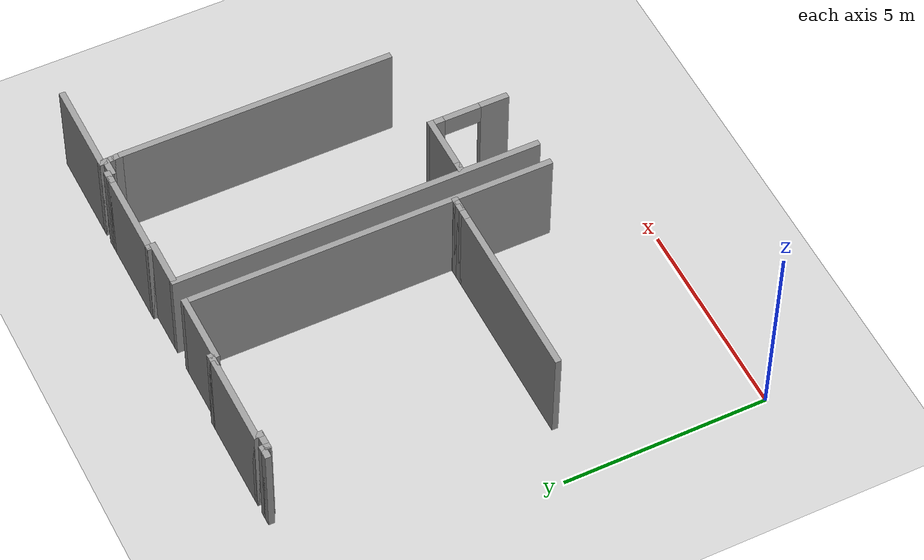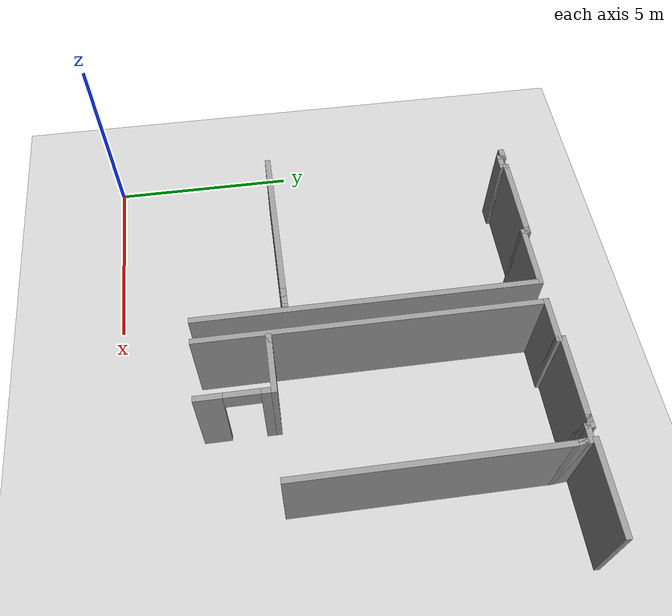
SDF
<sdf version="1.6">
 <world name="default">
  <model name="ground_plane">
   <static>1</static>
   <link name="link">
    <collision name="collision">
     <geometry><plane><normal>0 0 1</normal><size>100 100</size></plane></geometry>
     <surface><friction><ode><mu>100</mu><mu2>50</mu2></ode></friction></surface>
    </collision>
    <visual name="visual">
     <cast_shadows>0</cast_shadows>
     <geometry><plane><normal>0 0 1</normal><size>100 100</size></plane></geometry>
     <material>
      <script><uri>file://media/materials/scripts/gazebo.material</uri><name>Gazebo/Grey</name></script>
     </material>
    </visual>
   </link>
  </model>
  <model name="office_full">
   <pose>-0.417572 -0.704362 0 0 -0 0</pose>
   <link name="Wall_329">
    <collision name="Wall_329_Collision">
     <geometry><box><size>0.25 0.15 2.5</size></box></geometry>
     <pose>0 0 1.25 0 -0 0</pose>
    </collision>
    <visual name="Wall_329_Visual">
     <pose>0 0 1.25 0 -0 0</pose>
     <geometry><box><size>0.25 0.15 2.5</size></box></geometry>
     <material>
      <script><uri>file://media/materials/scripts/gazebo.material</uri><name>Gazebo/Grey</name></script>
      <ambient>1 1 1 1</ambient>
     </material>
    </visual>
    <pose>2.35798 11.8397 0 0 -0 0</pose>
   </link>
   <link name="Wall_330">
    <collision name="Wall_330_Collision">
     <geometry><box><size>0.25 0.15 2.5</size></box></geometry>
     <pose>0 0 1.25 0 -0 0</pose>
    </collision>
    <visual name="Wall_330_Visual">
     <pose>0 0 1.25 0 -0 0</pose>
     <geometry><box><size>0.25 0.15 2.5</size></box></geometry>
     <material>
      <script><uri>file://media/materials/scripts/gazebo.material</uri><name>Gazebo/Grey</name></script>
      <ambient>1 1 1 1</ambient>
     </material>
    </visual>
    <pose>2.45798 11.8397 0 0 -0 0</pose>
   </link>
   <link name="Wall_331">
    <collision name="Wall_331_Collision">
     <geometry><box><size>0.25 0.15 2.5</size></box></geometry>
     <pose>0 0 1.25 0 -0 0</pose>
    </collision>
    <visual name="Wall_331_Visual">
     <pose>0 0 1.25 0 -0 0</pose>
     <geometry><box><size>0.25 0.15 2.5</size></box></geometry>
     <material>
      <script><uri>file://media/materials/scripts/gazebo.material</uri><name>Gazebo/Grey</name></script>
      <ambient>1 1 1 1</ambient>
     </material>
    </visual>
    <pose>2.50798 11.7897 0 0 0 -1.5708</pose>
   </link>
   <link name="Wall_332">
    <collision name="Wall_332_Collision">
     <geometry><box><size>0.5 0.15 2.5</size></box></geometry>
     <pose>0 0 1.25 0 -0 0</pose>
    </collision>
    <visual name="Wall_332_Visual">
     <pose>0 0 1.25 0 -0 0</pose>
     <geometry><box><size>0.5 0.15 2.5</size></box></geometry>
     <material>
      <script><uri>file://media/materials/scripts/gazebo.material</uri><name>Gazebo/Grey</name></script>
      <ambient>1 1 1 1</ambient>
     </material>
    </visual>
    <pose>2.68298 11.7397 0 0 -0 0</pose>
   </link>
   <link name="Wall_333">
    <collision name="Wall_333_Collision">
     <geometry><box><size>0.25 0.15 2.5</size></box></geometry>
     <pose>0 0 1.25 0 -0 0</pose>
    </collision>
    <visual name="Wall_333_Visual">
     <pose>0 0 1.25 0 -0 0</pose>
     <geometry><box><size>0.25 0.15 2.5</size></box></geometry>
     <material>
      <script><uri>file://media/materials/scripts/gazebo.material</uri><name>Gazebo/Grey</name></script>
      <ambient>1 1 1 1</ambient>
     </material>
    </visual>
    <pose>2.85798 11.7897 0 0 -0 1.5708</pose>
   </link>
   <link name="Wall_334">
    <collision name="Wall_334_Collision">
     <geometry><box><size>2.25 0.15 2.5</size></box></geometry>
     <pose>0 0 1.25 0 -0 0</pose>
    </collision>
    <visual name="Wall_334_Visual">
     <pose>0 0 1.25 0 -0 0</pose>
     <geometry><box><size>2.25 0.15 2.5</size></box></geometry>
     <material>
      <script><uri>file://media/materials/scripts/gazebo.material</uri><name>Gazebo/Grey</name></script>
      <ambient>1 1 1 1</ambient>
     </material>
    </visual>
    <pose>3.90798 11.8397 0 0 -0 0</pose>
   </link>
   <link name="Wall_335">
    <collision name="Wall_335_Collision">
     <geometry><box><size>0.25 0.15 2.5</size></box></geometry>
     <pose>0 0 1.25 0 -0 0</pose>
    </collision>
    <visual name="Wall_335_Visual">
     <pose>0 0 1.25 0 -0 0</pose>
     <geometry><box><size>0.25 0.15 2.5</size></box></geometry>
     <material>
      <script><uri>file://media/materials/scripts/gazebo.material</uri><name>Gazebo/Grey</name></script>
      <ambient>1 1 1 1</ambient>
     </material>
    </visual>
    <pose>5.00798 11.8397 0 0 -0 0</pose>
   </link>
   <link name="Wall_338">
    <collision name="Wall_338_Collision">
     <geometry><box><size>0.25 0.15 2.5</size></box></geometry>
     <pose>0 0 1.25 0 -0 0</pose>
    </collision>
    <visual name="Wall_338_Visual">
     <pose>0 0 1.25 0 -0 0</pose>
     <geometry><box><size>0.25 0.15 2.5</size></box></geometry>
     <material>
      <script><uri>file://media/materials/scripts/gazebo.material</uri><name>Gazebo/Grey</name></script>
      <ambient>1 1 1 1</ambient>
     </material>
    </visual>
    <pose>5.00798 11.8397 0 0 -0 0</pose>
   </link>
   <link name="Wall_339">
    <collision name="Wall_339_Collision">
     <geometry><box><size>0.25 0.15 2.5</size></box></geometry>
     <pose>0 0 1.25 0 -0 0</pose>
    </collision>
    <visual name="Wall_339_Visual">
     <pose>0 0 1.25 0 -0 0</pose>
     <geometry><box><size>0.25 0.15 2.5</size></box></geometry>
     <material>
      <script><uri>file://media/materials/scripts/gazebo.material</uri><name>Gazebo/Grey</name></script>
      <ambient>1 1 1 1</ambient>
     </material>
    </visual>
    <pose>5.10798 11.8397 0 0 -0 0</pose>
   </link>
   <link name="Wall_340">
    <collision name="Wall_340_Collision">
     <geometry><box><size>0.25 0.15 2.5</size></box></geometry>
     <pose>0 0 1.25 0 -0 0</pose>
    </collision>
    <visual name="Wall_340_Visual">
     <pose>0 0 1.25 0 -0 0</pose>
     <geometry><box><size>0.25 0.15 2.5</size></box></geometry>
     <material>
      <script><uri>file://media/materials/scripts/gazebo.material</uri><name>Gazebo/Grey</name></script>
      <ambient>1 1 1 1</ambient>
     </material>
    </visual>
    <pose>5.15798 11.7897 0 0 0 -1.5708</pose>
   </link>
   <link name="Wall_341">
    <collision name="Wall_341_Collision">
     <geometry><box><size>1.75 0.15 2.5</size></box></geometry>
     <pose>0 0 1.25 0 -0 0</pose>
    </collision>
    <visual name="Wall_341_Visual">
     <pose>0 0 1.25 0 -0 0</pose>
     <geometry><box><size>1.75 0.15 2.5</size></box></geometry>
     <material>
      <script><uri>file://media/materials/scripts/gazebo.material</uri><name>Gazebo/Grey</name></script>
      <ambient>1 1 1 1</ambient>
     </material>
    </visual>
    <pose>5.95798 11.7397 0 0 -0 0</pose>
   </link>
   <link name="Wall_342">
    <collision name="Wall_342_Collision">
     <geometry><box><size>9 0.15 2.5</size></box></geometry>
     <pose>0 0 1.25 0 -0 0</pose>
    </collision>
    <visual name="Wall_342_Visual">
     <pose>0 0 1.25 0 -0 0</pose>
     <geometry><box><size>9 0.15 2.5</size></box></geometry>
     <material>
      <script><uri>file://media/materials/scripts/gazebo.material</uri><name>Gazebo/Grey</name></script>
      <ambient>1 1 1 1</ambient>
     </material>
    </visual>
    <pose>6.75798 7.31471 0 0 0 -1.5708</pose>
   </link>
   <link name="Wall_389">
    <collision name="Wall_389_Collision">
     <geometry><box><size>4.5 0.15 2.5</size></box></geometry>
     <pose>0 0 1.25 0 -0 0</pose>
    </collision>
    <visual name="Wall_389_Visual">
     <pose>0 0 1.25 0 -0 0</pose>
     <geometry><box><size>4.5 0.15 2.5</size></box></geometry>
     <material>
      <script><uri>file://media/materials/scripts/gazebo.material</uri><name>Gazebo/Grey</name></script>
      <ambient>1 1 1 1</ambient>
     </material>
    </visual>
    <pose>4.02068 5.23121 0 0 -0 0</pose>
   </link>
   <link name="Wall_390">
    <collision name="Wall_390_Collision">
     <geometry><box><size>0.25 0.15 2.5</size></box></geometry>
     <pose>0 0 1.25 0 -0 0</pose>
    </collision>
    <visual name="Wall_390_Visual">
     <pose>0 0 1.25 0 -0 0</pose>
     <geometry><box><size>0.25 0.15 2.5</size></box></geometry>
     <material>
      <script><uri>file://media/materials/scripts/gazebo.material</uri><name>Gazebo/Grey</name></script>
      <ambient>1 1 1 1</ambient>
     </material>
    </visual>
    <pose>6.24568 5.23121 0 0 -0 0</pose>
   </link>
   <link name="Wall_391">
    <collision name="Wall_391_Collision">
     <geometry><box><size>0.25 0.15 2.5</size></box></geometry>
     <pose>0 0 1.25 0 -0 0</pose>
    </collision>
    <visual name="Wall_391_Visual">
     <pose>0 0 1.25 0 -0 0</pose>
     <geometry><box><size>0.25 0.15 2.5</size></box></geometry>
     <material>
      <script><uri>file://media/materials/scripts/gazebo.material</uri><name>Gazebo/Grey</name></script>
      <ambient>1 1 1 1</ambient>
     </material>
    </visual>
    <pose>6.34568 5.23121 0 0 -0 0</pose>
   </link>
   <link name="Wall_392">
    <collision name="Wall_392_Collision">
     <geometry><box><size>0.25 0.15 2.5</size></box></geometry>
     <pose>0 0 1.25 0 -0 0</pose>
    </collision>
    <visual name="Wall_392_Visual">
     <pose>0 0 1.25 0 -0 0</pose>
     <geometry><box><size>0.25 0.15 2.5</size></box></geometry>
     <material>
      <script><uri>file://media/materials/scripts/gazebo.material</uri><name>Gazebo/Grey</name></script>
      <ambient>1 1 1 1</ambient>
     </material>
    </visual>
    <pose>6.44568 5.23121 0 0 -0 0</pose>
   </link>
   <link name="Wall_393">
    <collision name="Wall_393_Collision">
     <geometry><box><size>0.25 0.15 2.5</size></box></geometry>
     <pose>0 0 1.25 0 -0 0</pose>
    </collision>
    <visual name="Wall_393_Visual">
     <pose>0 0 1.25 0 -0 0</pose>
     <geometry><box><size>0.25 0.15 2.5</size></box></geometry>
     <material>
      <script><uri>file://media/materials/scripts/gazebo.material</uri><name>Gazebo/Grey</name></script>
      <ambient>1 1 1 1</ambient>
     </material>
    </visual>
    <pose>6.54568 5.23121 0 0 -0 0</pose>
   </link>
   <link name="Wall_394">
    <collision name="Wall_394_Collision">
     <geometry><box><size>0.25 0.15 2.5</size></box></geometry>
     <pose>0 0 1.25 0 -0 0</pose>
    </collision>
    <visual name="Wall_394_Visual">
     <pose>0 0 1.25 0 -0 0</pose>
     <geometry><box><size>0.25 0.15 2.5</size></box></geometry>
     <material>
      <script><uri>file://media/materials/scripts/gazebo.material</uri><name>Gazebo/Grey</name></script>
      <ambient>1 1 1 1</ambient>
     </material>
    </visual>
    <pose>6.64568 5.23121 0 0 -0 0</pose>
   </link>
   <link name="Wall_401">
    <collision name="Wall_401_Collision">
     <geometry><box><size>9 0.15 2.5</size></box></geometry>
     <pose>0 0 1.25 0 -0 0</pose>
    </collision>
    <visual name="Wall_401_Visual">
     <pose>0 0 1.25 0 -0 0</pose>
     <geometry><box><size>9 0.15 2.5</size></box></geometry>
     <material>
      <script><uri>file://media/materials/scripts/gazebo.material</uri><name>Gazebo/Grey</name></script>
      <ambient>1 1 1 1</ambient>
     </material>
    </visual>
    <pose>7.35798 7.31471 0 0 -0 1.5708</pose>
   </link>
   <link name="Wall_402">
    <collision name="Wall_402_Collision">
     <geometry><box><size>1.25 0.15 2.5</size></box></geometry>
     <pose>0 0 1.25 0 -0 0</pose>
    </collision>
    <visual name="Wall_402_Visual">
     <pose>0 0 1.25 0 -0 0</pose>
     <geometry><box><size>1.25 0.15 2.5</size></box></geometry>
     <material>
      <script><uri>file://media/materials/scripts/gazebo.material</uri><name>Gazebo/Grey</name></script>
      <ambient>1 1 1 1</ambient>
     </material>
    </visual>
    <pose>7.90798 11.7397 0 0 -0 0</pose>
   </link>
   <link name="Wall_403">
    <collision name="Wall_403_Collision">
     <geometry><box><size>0.25 0.15 2.5</size></box></geometry>
     <pose>0 0 1.25 0 -0 0</pose>
    </collision>
    <visual name="Wall_403_Visual">
     <pose>0 0 1.25 0 -0 0</pose>
     <geometry><box><size>0.25 0.15 2.5</size></box></geometry>
     <material>
      <script><uri>file://media/materials/scripts/gazebo.material</uri><name>Gazebo/Grey</name></script>
      <ambient>1 1 1 1</ambient>
     </material>
    </visual>
    <pose>8.45798 11.7897 0 0 -0 1.5708</pose>
   </link>
   <link name="Wall_404">
    <collision name="Wall_404_Collision">
     <geometry><box><size>2.25 0.15 2.5</size></box></geometry>
     <pose>0 0 1.25 0 -0 0</pose>
    </collision>
    <visual name="Wall_404_Visual">
     <pose>0 0 1.25 0 -0 0</pose>
     <geometry><box><size>2.25 0.15 2.5</size></box></geometry>
     <material>
      <script><uri>file://media/materials/scripts/gazebo.material</uri><name>Gazebo/Grey</name></script>
      <ambient>1 1 1 1</ambient>
     </material>
    </visual>
    <pose>9.50798 11.8397 0 0 -0 0</pose>
   </link>
   <link name="Wall_405">
    <collision name="Wall_405_Collision">
     <geometry><box><size>0.25 0.15 2.5</size></box></geometry>
     <pose>0 0 1.25 0 -0 0</pose>
    </collision>
    <visual name="Wall_405_Visual">
     <pose>0 0 1.25 0 -0 0</pose>
     <geometry><box><size>0.25 0.15 2.5</size></box></geometry>
     <material>
      <script><uri>file://media/materials/scripts/gazebo.material</uri><name>Gazebo/Grey</name></script>
      <ambient>1 1 1 1</ambient>
     </material>
    </visual>
    <pose>10.608 11.8397 0 0 -0 0</pose>
   </link>
   <link name="Wall_406">
    <collision name="Wall_406_Collision">
     <geometry><box><size>0.25 0.15 2.5</size></box></geometry>
     <pose>0 0 1.25 0 -0 0</pose>
    </collision>
    <visual name="Wall_406_Visual">
     <pose>0 0 1.25 0 -0 0</pose>
     <geometry><box><size>0.25 0.15 2.5</size></box></geometry>
     <material>
      <script><uri>file://media/materials/scripts/gazebo.material</uri><name>Gazebo/Grey</name></script>
      <ambient>1 1 1 1</ambient>
     </material>
    </visual>
    <pose>10.708 11.8397 0 0 -0 0</pose>
   </link>
   <link name="Wall_407">
    <collision name="Wall_407_Collision">
     <geometry><box><size>0.25 0.15 2.5</size></box></geometry>
     <pose>0 0 1.25 0 -0 0</pose>
    </collision>
    <visual name="Wall_407_Visual">
     <pose>0 0 1.25 0 -0 0</pose>
     <geometry><box><size>0.25 0.15 2.5</size></box></geometry>
     <material>
      <script><uri>file://media/materials/scripts/gazebo.material</uri><name>Gazebo/Grey</name></script>
      <ambient>1 1 1 1</ambient>
     </material>
    </visual>
    <pose>10.758 11.7897 0 0 0 -1.5708</pose>
   </link>
   <link name="Wall_458">
    <pose>8.90798 3.81471 0 0 -0 1.5708</pose>
    <visual name="Wall_458_Visual_0">
     <pose>-0.644234 0 1.25 0 -0 0</pose>
     <geometry><box><size>0.711531 0.15 2.5</size></box></geometry>
     <material>
      <script><uri>file://media/materials/scripts/gazebo.material</uri><name>Gazebo/Grey</name></script>
      <ambient>1 1 1 1</ambient>
     </material>
    </visual>
    <collision name="Wall_458_Collision_0">
     <geometry><box><size>0.711531 0.15 2.5</size></box></geometry>
     <pose>-0.644234 0 1.25 0 -0 0</pose>
    </collision>
    <visual name="Wall_458_Visual_1">
     <pose>0.805766 0 1.25 0 -0 0</pose>
     <geometry><box><size>0.388469 0.15 2.5</size></box></geometry>
     <material>
      <script><uri>file://media/materials/scripts/gazebo.material</uri><name>Gazebo/Grey</name></script>
      <ambient>1 1 1 1</ambient>
     </material>
    </visual>
    <collision name="Wall_458_Collision_1">
     <geometry><box><size>0.388469 0.15 2.5</size></box></geometry>
     <pose>0.805766 0 1.25 0 -0 0</pose>
    </collision>
    <visual name="Wall_458_Visual_2">
     <pose>0.161531 0 2.25 0 -0 0</pose>
     <geometry><box><size>0.9 0.15 0.5</size></box></geometry>
     <material>
      <script><uri>file://media/materials/scripts/gazebo.material</uri><name>Gazebo/Grey</name></script>
      <ambient>1 1 1 1</ambient>
     </material>
    </visual>
    <collision name="Wall_458_Collision_2">
     <geometry><box><size>0.9 0.15 0.5</size></box></geometry>
     <pose>0.161531 0 2.25 0 -0 0</pose>
    </collision>
   </link>
   <link name="Wall_459">
    <collision name="Wall_459_Collision">
     <geometry><box><size>1.5 0.15 2.5</size></box></geometry>
     <pose>0 0 1.25 0 -0 0</pose>
    </collision>
    <visual name="Wall_459_Visual">
     <pose>0 0 1.25 0 -0 0</pose>
     <geometry><box><size>1.5 0.15 2.5</size></box></geometry>
     <material>
      <script><uri>file://media/materials/scripts/gazebo.material</uri><name>Gazebo/Grey</name></script>
      <ambient>1 1 1 1</ambient>
     </material>
    </visual>
    <pose>8.23298 4.73971 0 0 -0 3.14159</pose>
   </link>
   <link name="Wall_460">
    <collision name="Wall_460_Collision">
     <geometry><box><size>0.25 0.15 2.5</size></box></geometry>
     <pose>0 0 1.25 0 -0 0</pose>
    </collision>
    <visual name="Wall_460_Visual">
     <pose>0 0 1.25 0 -0 0</pose>
     <geometry><box><size>0.25 0.15 2.5</size></box></geometry>
     <material>
      <script><uri>file://media/materials/scripts/gazebo.material</uri><name>Gazebo/Grey</name></script>
      <ambient>1 1 1 1</ambient>
     </material>
    </visual>
    <pose>7.50798 4.73971 0 0 -0 3.14159</pose>
   </link>
   <link name="Wall_486">
    <collision name="Wall_486_Collision">
     <geometry><box><size>6.75242 0.15 2.5</size></box></geometry>
     <pose>0 0 1.25 0 -0 0</pose>
    </collision>
    <visual name="Wall_486_Visual">
     <pose>0 0 1.25 0 -0 0</pose>
     <geometry><box><size>6.75242 0.15 2.5</size></box></geometry>
     <material>
      <script><uri>file://media/materials/scripts/gazebo.material</uri><name>Gazebo/Grey</name></script>
      <ambient>1 1 1 1</ambient>
     </material>
    </visual>
    <pose>11.136 8.04511 0 0 -0 1.57129</pose>
   </link>
   <link name="Wall_488">
    <collision name="Wall_488_Collision">
     <geometry><box><size>0.25 0.15 2.5</size></box></geometry>
     <pose>0 0 1.25 0 -0 0</pose>
    </collision>
    <visual name="Wall_488_Visual">
     <pose>0 0 1.25 0 -0 0</pose>
     <geometry><box><size>0.25 0.15 2.5</size></box></geometry>
     <material>
      <script><uri>file://media/materials/scripts/gazebo.material</uri><name>Gazebo/Grey</name></script>
      <ambient>1 1 1 1</ambient>
     </material>
    </visual>
    <pose>10.758 11.7897 0 0 0 -1.5708</pose>
   </link>
   <link name="Wall_496">
    <collision name="Wall_496_Collision">
     <geometry><box><size>0.25 0.15 2.5</size></box></geometry>
     <pose>0 0 1.25 0 -0 0</pose>
    </collision>
    <visual name="Wall_496_Visual">
     <pose>0 0 1.25 0 -0 0</pose>
     <geometry><box><size>0.25 0.15 2.5</size></box></geometry>
     <material>
      <script><uri>file://media/materials/scripts/gazebo.material</uri><name>Gazebo/Grey</name></script>
      <ambient>1 1 1 1</ambient>
     </material>
    </visual>
    <pose>10.758 11.7897 0 0 0 -1.5708</pose>
   </link>
   <link name="Wall_497">
    <collision name="Wall_497_Collision">
     <geometry><box><size>0.5 0.15 2.5</size></box></geometry>
     <pose>0 0 1.25 0 -0 0</pose>
    </collision>
    <visual name="Wall_497_Visual">
     <pose>0 0 1.25 0 -0 0</pose>
     <geometry><box><size>0.5 0.15 2.5</size></box></geometry>
     <material>
      <script><uri>file://media/materials/scripts/gazebo.material</uri><name>Gazebo/Grey</name></script>
      <ambient>1 1 1 1</ambient>
     </material>
    </visual>
    <pose>10.933 11.7397 0 0 -0 0</pose>
   </link>
   <link name="Wall_499">
    <collision name="Wall_499_Collision">
     <geometry><box><size>0.54241 0.15 2.5</size></box></geometry>
     <pose>0 0 1.25 0 -0 0</pose>
    </collision>
    <visual name="Wall_499_Visual">
     <pose>0 0 1.25 0 -0 0</pose>
     <geometry><box><size>0.54241 0.15 2.5</size></box></geometry>
     <material>
      <script><uri>file://media/materials/scripts/gazebo.material</uri><name>Gazebo/Grey</name></script>
      <ambient>1 1 1 1</ambient>
     </material>
    </visual>
    <pose>11.1212 11.5439 0 0 0 -1.50335</pose>
   </link>
   <link name="Wall_500">
    <collision name="Wall_500_Collision">
     <geometry><box><size>0.54241 0.15 2.5</size></box></geometry>
     <pose>0 0 1.25 0 -0 0</pose>
    </collision>
    <visual name="Wall_500_Visual">
     <pose>0 0 1.25 0 -0 0</pose>
     <geometry><box><size>0.54241 0.15 2.5</size></box></geometry>
     <material>
      <script><uri>file://media/materials/scripts/gazebo.material</uri><name>Gazebo/Grey</name></script>
      <ambient>1 1 1 1</ambient>
     </material>
    </visual>
    <pose>11.1212 11.5439 0 0 -0 1.63824</pose>
   </link>
   <link name="Wall_501">
    <collision name="Wall_501_Collision">
     <geometry><box><size>0.25 0.15 2.5</size></box></geometry>
     <pose>0 0 1.25 0 -0 0</pose>
    </collision>
    <visual name="Wall_501_Visual">
     <pose>0 0 1.25 0 -0 0</pose>
     <geometry><box><size>0.25 0.15 2.5</size></box></geometry>
     <material>
      <script><uri>file://media/materials/scripts/gazebo.material</uri><name>Gazebo/Grey</name></script>
      <ambient>1 1 1 1</ambient>
     </material>
    </visual>
    <pose>11.108 11.7897 0 0 -0 1.5708</pose>
   </link>
   <link name="Wall_502">
    <collision name="Wall_502_Collision">
     <geometry><box><size>2.35 0.15 2.5</size></box></geometry>
     <pose>0 0 1.25 0 -0 0</pose>
    </collision>
    <visual name="Wall_502_Visual">
     <pose>0 0 1.25 0 -0 0</pose>
     <geometry><box><size>2.35 0.15 2.5</size></box></geometry>
     <material>
      <script><uri>file://media/materials/scripts/gazebo.material</uri><name>Gazebo/Grey</name></script>
      <ambient>1 1 1 1</ambient>
     </material>
    </visual>
    <pose>12.208 11.8397 0 0 -0 0</pose>
   </link>
   <static>1</static>
  </model>
 </world>
</sdf>
